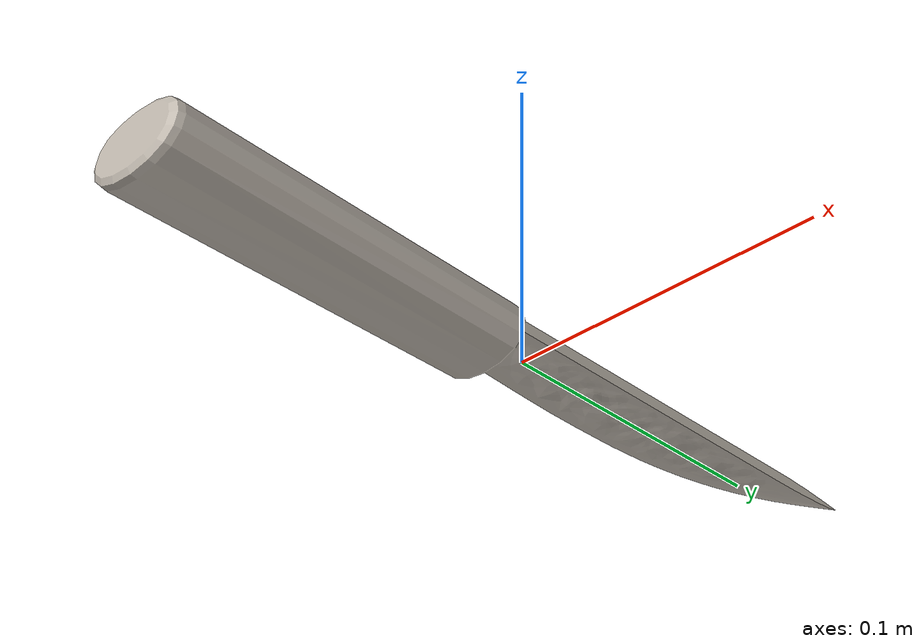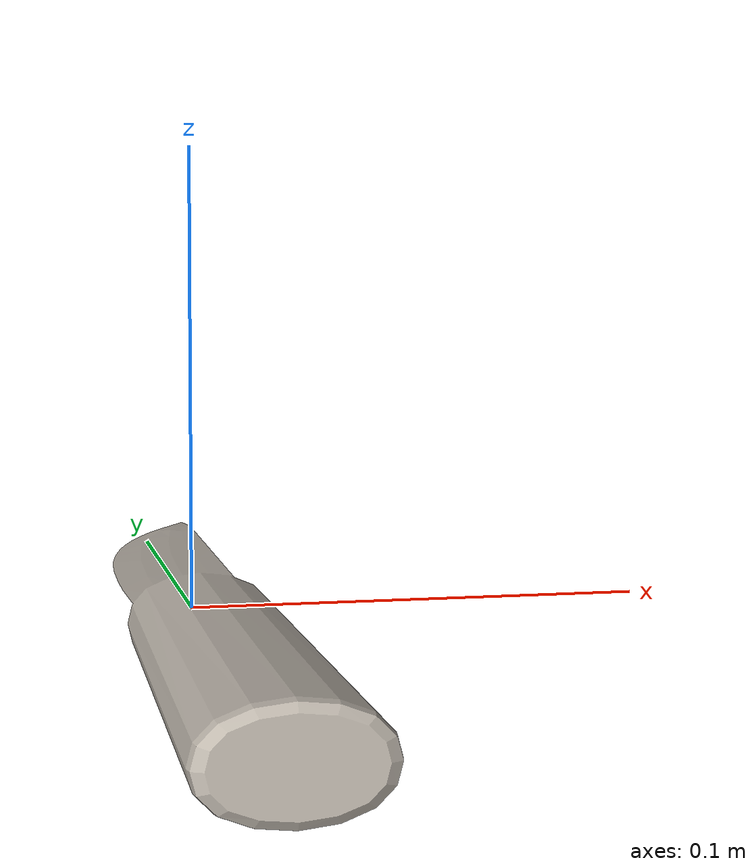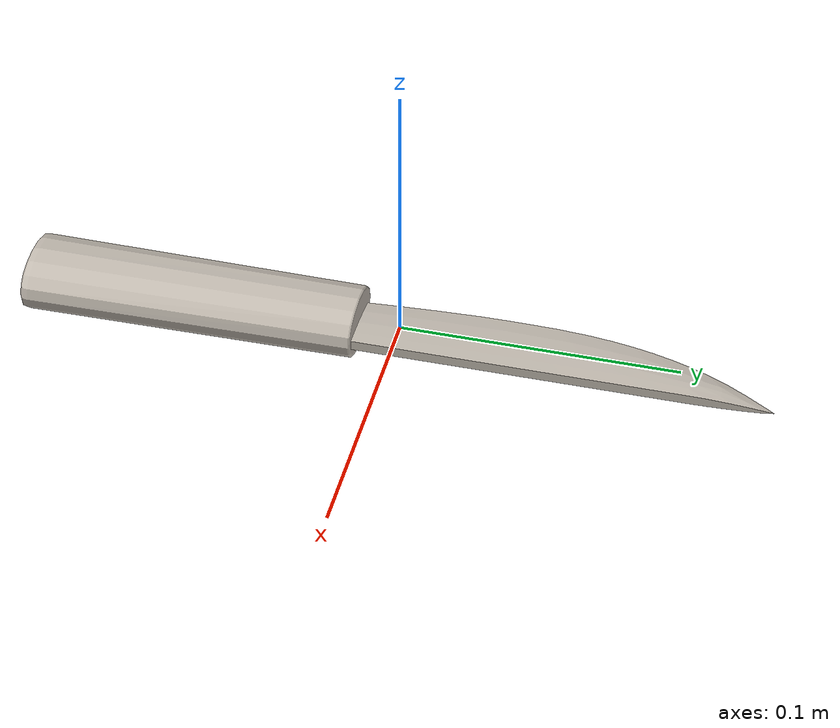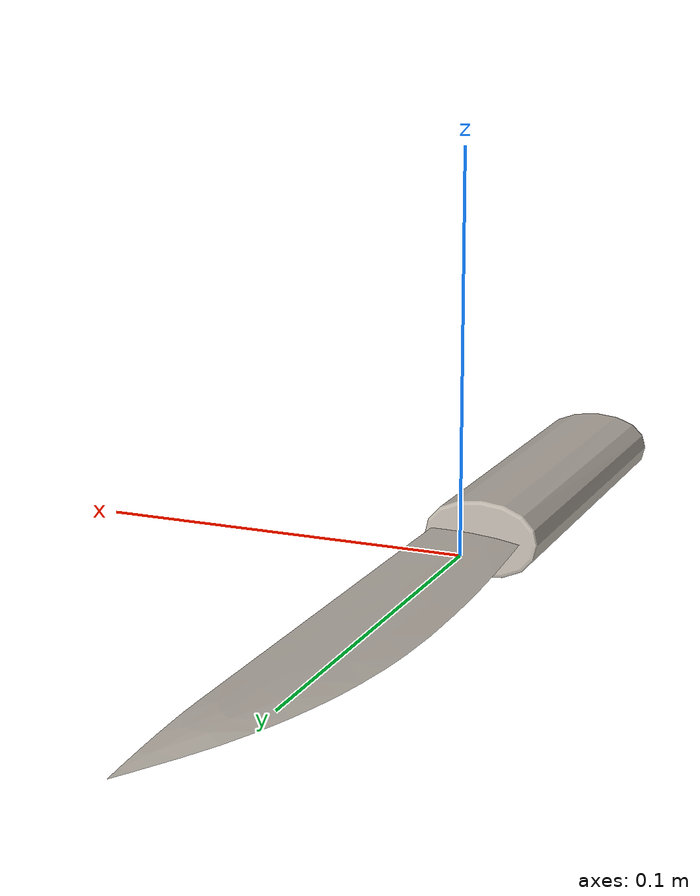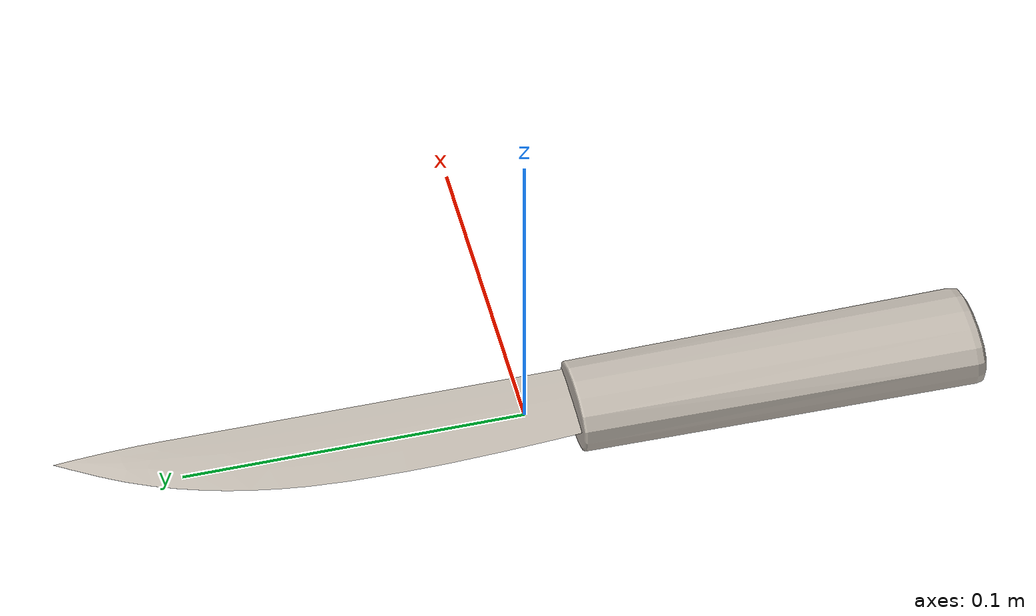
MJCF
<mujoco model="knife_9">
    <compiler angle="radian" />
  <default>
    <default class="visual">
      <geom group="1" type="mesh" contype="0" conaffinity="0" />
    </default>
    <default class="collision">
      <geom group="0" type="mesh" solref="0.001 1" solimp="0.998 0.998 0.001" />
    </default>
    <default class="grasppoint">
        <site type="sphere" size="0.01" group="4" rgba="0 0 1 0.2" />
    </default>
  </default>

  <asset>
    <mesh file="visual/model_normalized_0.obj" name="model_normalized_0_vis" scale="0.27 0.27 0.27" refquat="-7.85046229341889e-17 0.7071067811865489 7.850462293418886e-17 0.7071067811865483" />
    <mesh file="collision/model_normalized_collision_22.obj" name="model_normalized_collision_22._coll" scale="0.27 0.27 0.27" refquat="-7.85046229341889e-17 0.7071067811865489 7.850462293418886e-17 0.7071067811865483" />
    <mesh file="collision/model_normalized_collision_23.obj" name="model_normalized_collision_23._coll" scale="0.27 0.27 0.27" refquat="-7.85046229341889e-17 0.7071067811865489 7.850462293418886e-17 0.7071067811865483" />
    <mesh file="collision/model_normalized_collision_21.obj" name="model_normalized_collision_21._coll" scale="0.27 0.27 0.27" refquat="-7.85046229341889e-17 0.7071067811865489 7.850462293418886e-17 0.7071067811865483" />
    <mesh file="collision/model_normalized_collision_20.obj" name="model_normalized_collision_20._coll" scale="0.27 0.27 0.27" refquat="-7.85046229341889e-17 0.7071067811865489 7.850462293418886e-17 0.7071067811865483" />
    <mesh file="collision/model_normalized_collision_24.obj" name="model_normalized_collision_24._coll" scale="0.27 0.27 0.27" refquat="-7.85046229341889e-17 0.7071067811865489 7.850462293418886e-17 0.7071067811865483" />
    <mesh file="collision/model_normalized_collision_30.obj" name="model_normalized_collision_30._coll" scale="0.27 0.27 0.27" refquat="-7.85046229341889e-17 0.7071067811865489 7.850462293418886e-17 0.7071067811865483" />
    <mesh file="collision/model_normalized_collision_18.obj" name="model_normalized_collision_18._coll" scale="0.27 0.27 0.27" refquat="-7.85046229341889e-17 0.7071067811865489 7.850462293418886e-17 0.7071067811865483" />
    <mesh file="collision/model_normalized_collision_19.obj" name="model_normalized_collision_19._coll" scale="0.27 0.27 0.27" refquat="-7.85046229341889e-17 0.7071067811865489 7.850462293418886e-17 0.7071067811865483" />
    <mesh file="collision/model_normalized_collision_31.obj" name="model_normalized_collision_31._coll" scale="0.27 0.27 0.27" refquat="-7.85046229341889e-17 0.7071067811865489 7.850462293418886e-17 0.7071067811865483" />
    <mesh file="collision/model_normalized_collision_25.obj" name="model_normalized_collision_25._coll" scale="0.27 0.27 0.27" refquat="-7.85046229341889e-17 0.7071067811865489 7.850462293418886e-17 0.7071067811865483" />
    <mesh file="collision/model_normalized_collision_27.obj" name="model_normalized_collision_27._coll" scale="0.27 0.27 0.27" refquat="-7.85046229341889e-17 0.7071067811865489 7.850462293418886e-17 0.7071067811865483" />
    <mesh file="collision/model_normalized_collision_26.obj" name="model_normalized_collision_26._coll" scale="0.27 0.27 0.27" refquat="-7.85046229341889e-17 0.7071067811865489 7.850462293418886e-17 0.7071067811865483" />
    <mesh file="collision/model_normalized_collision_9.obj" name="model_normalized_collision_9._coll" scale="0.27 0.27 0.27" refquat="-7.85046229341889e-17 0.7071067811865489 7.850462293418886e-17 0.7071067811865483" />
    <mesh file="collision/model_normalized_collision_8.obj" name="model_normalized_collision_8._coll" scale="0.27 0.27 0.27" refquat="-7.85046229341889e-17 0.7071067811865489 7.850462293418886e-17 0.7071067811865483" />
    <mesh file="collision/model_normalized_collision_6.obj" name="model_normalized_collision_6._coll" scale="0.27 0.27 0.27" refquat="-7.85046229341889e-17 0.7071067811865489 7.850462293418886e-17 0.7071067811865483" />
    <mesh file="collision/model_normalized_collision_7.obj" name="model_normalized_collision_7._coll" scale="0.27 0.27 0.27" refquat="-7.85046229341889e-17 0.7071067811865489 7.850462293418886e-17 0.7071067811865483" />
    <mesh file="collision/model_normalized_collision_5.obj" name="model_normalized_collision_5._coll" scale="0.27 0.27 0.27" refquat="-7.85046229341889e-17 0.7071067811865489 7.850462293418886e-17 0.7071067811865483" />
    <mesh file="collision/model_normalized_collision_4.obj" name="model_normalized_collision_4._coll" scale="0.27 0.27 0.27" refquat="-7.85046229341889e-17 0.7071067811865489 7.850462293418886e-17 0.7071067811865483" />
    <mesh file="collision/model_normalized_collision_0.obj" name="model_normalized_collision_0._coll" scale="0.27 0.27 0.27" refquat="-7.85046229341889e-17 0.7071067811865489 7.850462293418886e-17 0.7071067811865483" />
    <mesh file="collision/model_normalized_collision_1.obj" name="model_normalized_collision_1._coll" scale="0.27 0.27 0.27" refquat="-7.85046229341889e-17 0.7071067811865489 7.850462293418886e-17 0.7071067811865483" />
    <mesh file="collision/model_normalized_collision_3.obj" name="model_normalized_collision_3._coll" scale="0.27 0.27 0.27" refquat="-7.85046229341889e-17 0.7071067811865489 7.850462293418886e-17 0.7071067811865483" />
    <mesh file="collision/model_normalized_collision_2.obj" name="model_normalized_collision_2._coll" scale="0.27 0.27 0.27" refquat="-7.85046229341889e-17 0.7071067811865489 7.850462293418886e-17 0.7071067811865483" />
    <mesh file="collision/model_normalized_collision_17.obj" name="model_normalized_collision_17._coll" scale="0.27 0.27 0.27" refquat="-7.85046229341889e-17 0.7071067811865489 7.850462293418886e-17 0.7071067811865483" />
    <mesh file="collision/model_normalized_collision_16.obj" name="model_normalized_collision_16._coll" scale="0.27 0.27 0.27" refquat="-7.85046229341889e-17 0.7071067811865489 7.850462293418886e-17 0.7071067811865483" />
    <mesh file="collision/model_normalized_collision_28.obj" name="model_normalized_collision_28._coll" scale="0.27 0.27 0.27" refquat="-7.85046229341889e-17 0.7071067811865489 7.850462293418886e-17 0.7071067811865483" />
    <mesh file="collision/model_normalized_collision_14.obj" name="model_normalized_collision_14._coll" scale="0.27 0.27 0.27" refquat="-7.85046229341889e-17 0.7071067811865489 7.850462293418886e-17 0.7071067811865483" />
    <mesh file="collision/model_normalized_collision_15.obj" name="model_normalized_collision_15._coll" scale="0.27 0.27 0.27" refquat="-7.85046229341889e-17 0.7071067811865489 7.850462293418886e-17 0.7071067811865483" />
    <mesh file="collision/model_normalized_collision_29.obj" name="model_normalized_collision_29._coll" scale="0.27 0.27 0.27" refquat="-7.85046229341889e-17 0.7071067811865489 7.850462293418886e-17 0.7071067811865483" />
    <mesh file="collision/model_normalized_collision_11.obj" name="model_normalized_collision_11._coll" scale="0.27 0.27 0.27" refquat="-7.85046229341889e-17 0.7071067811865489 7.850462293418886e-17 0.7071067811865483" />
    <mesh file="collision/model_normalized_collision_10.obj" name="model_normalized_collision_10._coll" scale="0.27 0.27 0.27" refquat="-7.85046229341889e-17 0.7071067811865489 7.850462293418886e-17 0.7071067811865483" />
    <mesh file="collision/model_normalized_collision_12.obj" name="model_normalized_collision_12._coll" scale="0.27 0.27 0.27" refquat="-7.85046229341889e-17 0.7071067811865489 7.850462293418886e-17 0.7071067811865483" />
    <mesh file="collision/model_normalized_collision_13.obj" name="model_normalized_collision_13._coll" scale="0.27 0.27 0.27" refquat="-7.85046229341889e-17 0.7071067811865489 7.850462293418886e-17 0.7071067811865483" />
    <texture type="2d" name="image0" file="visual/image0.png" />
    <material name="Scene_-_Root.025" texture="image0" specular="0.5" shininess="0.25" />
  </asset>
  <worldbody>
  <body>
      <site rgba="0 0 0 0" size="0.005" pos="0.0001727622500000002 2.849999998499886e-09 -0.007067847999999987" name="bottom_site" />
      <site rgba="0 0 0 0" size="0.005" pos="0.0001727622500000002 2.849999998499886e-09 0.007076219400000013" name="top_site" />
      <site rgba="0 0 0 0" size="0.005" pos="0.0115169431 0.095 4.185700000013046e-06" name="horizontal_radius_site" />
      <site class="grasppoint" pos="0 -0.06 0" />
    <body name="object">
    <geom solimp="0.998 0.998 0.001" solref="0.001 1" density="100" friction="0.95 0.3 0.1" type="mesh" mesh="model_normalized_0_vis" conaffinity="0" contype="0" group="1" material="Scene_-_Root.025" />
        <geom solimp="0.998 0.998 0.001" solref="0.001 1" density="100" friction="0.95 0.3 0.1" type="mesh" mesh="model_normalized_collision_22._coll" group="0" rgba="0.8 0.8 0.8 0.0" />
        <geom solimp="0.998 0.998 0.001" solref="0.001 1" density="100" friction="0.95 0.3 0.1" type="mesh" mesh="model_normalized_collision_23._coll" group="0" rgba="0.8 0.8 0.8 0.0" />
        <geom solimp="0.998 0.998 0.001" solref="0.001 1" density="100" friction="0.95 0.3 0.1" type="mesh" mesh="model_normalized_collision_21._coll" group="0" rgba="0.8 0.8 0.8 0.0" />
        <geom solimp="0.998 0.998 0.001" solref="0.001 1" density="100" friction="0.95 0.3 0.1" type="mesh" mesh="model_normalized_collision_20._coll" group="0" rgba="0.8 0.8 0.8 0.0" />
        <geom solimp="0.998 0.998 0.001" solref="0.001 1" density="100" friction="0.95 0.3 0.1" type="mesh" mesh="model_normalized_collision_24._coll" group="0" rgba="0.8 0.8 0.8 0.0" />
        <geom solimp="0.998 0.998 0.001" solref="0.001 1" density="100" friction="0.95 0.3 0.1" type="mesh" mesh="model_normalized_collision_30._coll" group="0" rgba="0.8 0.8 0.8 0.0" />
        <geom solimp="0.998 0.998 0.001" solref="0.001 1" density="100" friction="0.95 0.3 0.1" type="mesh" mesh="model_normalized_collision_18._coll" group="0" rgba="0.8 0.8 0.8 0.0" />
        <geom solimp="0.998 0.998 0.001" solref="0.001 1" density="100" friction="0.95 0.3 0.1" type="mesh" mesh="model_normalized_collision_19._coll" group="0" rgba="0.8 0.8 0.8 0.0" />
        <geom solimp="0.998 0.998 0.001" solref="0.001 1" density="100" friction="0.95 0.3 0.1" type="mesh" mesh="model_normalized_collision_31._coll" group="0" rgba="0.8 0.8 0.8 0.0" />
        <geom solimp="0.998 0.998 0.001" solref="0.001 1" density="100" friction="0.95 0.3 0.1" type="mesh" mesh="model_normalized_collision_25._coll" group="0" rgba="0.8 0.8 0.8 0.0" />
        <geom solimp="0.998 0.998 0.001" solref="0.001 1" density="100" friction="0.95 0.3 0.1" type="mesh" mesh="model_normalized_collision_27._coll" group="0" rgba="0.8 0.8 0.8 0.0" />
        <geom solimp="0.998 0.998 0.001" solref="0.001 1" density="100" friction="0.95 0.3 0.1" type="mesh" mesh="model_normalized_collision_26._coll" group="0" rgba="0.8 0.8 0.8 0.0" />
        <geom solimp="0.998 0.998 0.001" solref="0.001 1" density="100" friction="0.95 0.3 0.1" type="mesh" mesh="model_normalized_collision_9._coll" group="0" rgba="0.8 0.8 0.8 0.0" />
        <geom solimp="0.998 0.998 0.001" solref="0.001 1" density="100" friction="0.95 0.3 0.1" type="mesh" mesh="model_normalized_collision_8._coll" group="0" rgba="0.8 0.8 0.8 0.0" />
        <geom solimp="0.998 0.998 0.001" solref="0.001 1" density="100" friction="0.95 0.3 0.1" type="mesh" mesh="model_normalized_collision_6._coll" group="0" rgba="0.8 0.8 0.8 0.0" />
        <geom solimp="0.998 0.998 0.001" solref="0.001 1" density="100" friction="0.95 0.3 0.1" type="mesh" mesh="model_normalized_collision_7._coll" group="0" rgba="0.8 0.8 0.8 0.0" />
        <geom solimp="0.998 0.998 0.001" solref="0.001 1" density="100" friction="0.95 0.3 0.1" type="mesh" mesh="model_normalized_collision_5._coll" group="0" rgba="0.8 0.8 0.8 0.0" />
        <geom solimp="0.998 0.998 0.001" solref="0.001 1" density="100" friction="0.95 0.3 0.1" type="mesh" mesh="model_normalized_collision_4._coll" group="0" rgba="0.8 0.8 0.8 0.0" />
        <geom solimp="0.998 0.998 0.001" solref="0.001 1" density="100" friction="0.95 0.3 0.1" type="mesh" mesh="model_normalized_collision_0._coll" group="0" rgba="0.8 0.8 0.8 0.0" />
        <geom solimp="0.998 0.998 0.001" solref="0.001 1" density="100" friction="0.95 0.3 0.1" type="mesh" mesh="model_normalized_collision_1._coll" group="0" rgba="0.8 0.8 0.8 0.0" />
        <geom solimp="0.998 0.998 0.001" solref="0.001 1" density="100" friction="0.95 0.3 0.1" type="mesh" mesh="model_normalized_collision_3._coll" group="0" rgba="0.8 0.8 0.8 0.0" />
        <geom solimp="0.998 0.998 0.001" solref="0.001 1" density="100" friction="0.95 0.3 0.1" type="mesh" mesh="model_normalized_collision_2._coll" group="0" rgba="0.8 0.8 0.8 0.0" />
        <geom solimp="0.998 0.998 0.001" solref="0.001 1" density="100" friction="0.95 0.3 0.1" type="mesh" mesh="model_normalized_collision_17._coll" group="0" rgba="0.8 0.8 0.8 0.0" />
        <geom solimp="0.998 0.998 0.001" solref="0.001 1" density="100" friction="0.95 0.3 0.1" type="mesh" mesh="model_normalized_collision_16._coll" group="0" rgba="0.8 0.8 0.8 0.0" />
        <geom solimp="0.998 0.998 0.001" solref="0.001 1" density="100" friction="0.95 0.3 0.1" type="mesh" mesh="model_normalized_collision_28._coll" group="0" rgba="0.8 0.8 0.8 0.0" />
        <geom solimp="0.998 0.998 0.001" solref="0.001 1" density="100" friction="0.95 0.3 0.1" type="mesh" mesh="model_normalized_collision_14._coll" group="0" rgba="0.8 0.8 0.8 0.0" />
        <geom solimp="0.998 0.998 0.001" solref="0.001 1" density="100" friction="0.95 0.3 0.1" type="mesh" mesh="model_normalized_collision_15._coll" group="0" rgba="0.8 0.8 0.8 0.0" />
        <geom solimp="0.998 0.998 0.001" solref="0.001 1" density="100" friction="0.95 0.3 0.1" type="mesh" mesh="model_normalized_collision_29._coll" group="0" rgba="0.8 0.8 0.8 0.0" />
        <geom solimp="0.998 0.998 0.001" solref="0.001 1" density="100" friction="0.95 0.3 0.1" type="mesh" mesh="model_normalized_collision_11._coll" group="0" rgba="0.8 0.8 0.8 0.0" />
        <geom solimp="0.998 0.998 0.001" solref="0.001 1" density="100" friction="0.95 0.3 0.1" type="mesh" mesh="model_normalized_collision_10._coll" group="0" rgba="0.8 0.8 0.8 0.0" />
        <geom solimp="0.998 0.998 0.001" solref="0.001 1" density="100" friction="0.95 0.3 0.1" type="mesh" mesh="model_normalized_collision_12._coll" group="0" rgba="0.8 0.8 0.8 0.0" />
        <geom solimp="0.998 0.998 0.001" solref="0.001 1" density="100" friction="0.95 0.3 0.1" type="mesh" mesh="model_normalized_collision_13._coll" group="0" rgba="0.8 0.8 0.8 0.0" />
      </body>
  </body>
  </worldbody>
</mujoco>
